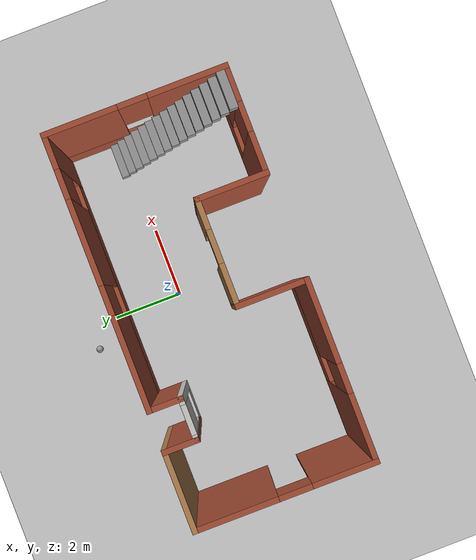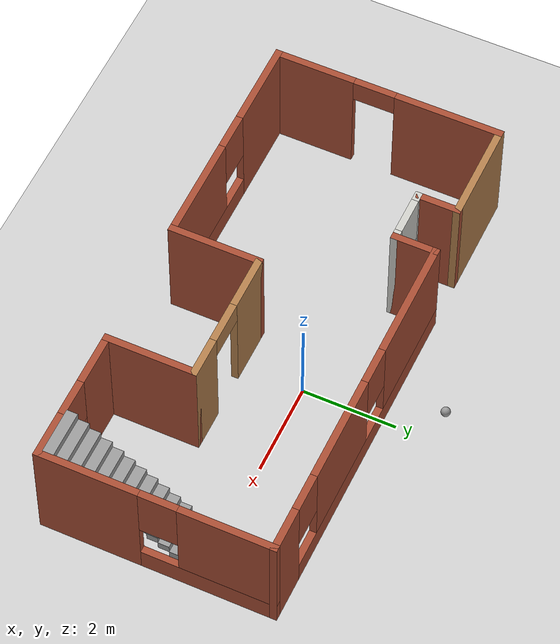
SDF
<sdf version="1.6">
 <world name="default">
  <plugin name="hello" filename="libhello.so"/>
  <light name="sun" type="directional">
   <pose>0 0 10 0 -0 0</pose>
   <diffuse>0.8 0.8 0.8 1</diffuse>
   <specular>0.2 0.2 0.2 1</specular>
   <attenuation>
    <range>1000</range>
    <constant>0.9</constant>
    <linear>0.01</linear>
    <quadratic>0.001</quadratic>
   </attenuation>
   <direction>-0.5 0.1 -0.9</direction>
  </light>
  <model name="ground_plane">
   <static>1</static>
   <link name="link">
    <collision name="collision">
     <geometry><plane><normal>0 0 1</normal><size>100 100</size></plane></geometry>
     <surface>
      <contact><collide_bitmask>65535</collide_bitmask></contact>
      <friction><ode><mu>100</mu><mu2>50</mu2></ode></friction>
     </surface>
    </collision>
    <visual name="visual">
     <cast_shadows>0</cast_shadows>
     <geometry><plane><normal>0 0 1</normal><size>100 100</size></plane></geometry>
     <material>
      <script><uri>file://media/materials/scripts/gazebo.material</uri><name>Gazebo/Grey</name></script>
     </material>
    </visual>
   </link>
  </model>
  <gravity>0 0 -9.8</gravity>
  <magnetic_field>6e-06 2.3e-05 -4.2e-05</magnetic_field>
  <atmosphere type="adiabatic"/>
  <physics name="default_physics" default="0" type="ode">
   <max_step_size>0.001</max_step_size>
   <real_time_factor>1</real_time_factor>
   <real_time_update_rate>1000</real_time_update_rate>
  </physics>
  <scene><ambient>0.4 0.4 0.4 1</ambient><background>0.7 0.7 0.7 1</background><shadows>1</shadows></scene>
  <spherical_coordinates>
   <surface_model>EARTH_WGS84</surface_model>
   <latitude_deg>0</latitude_deg>
   <longitude_deg>0</longitude_deg>
   <elevation>0</elevation>
   <heading_deg>0</heading_deg>
  </spherical_coordinates>
  <model name="mybuilding">
   <pose>-0.443169 -0.779943 0 0 -0 0</pose>
   <link name="Stairs_1">
    <visual name="Stairs_1_Visual_0">
     <pose>4.705 1.01833 0.083333 0 -0 0</pose>
     <geometry><box><size>1 0.233333 0.166667</size></box></geometry>
     <material>
      <script><uri>file://media/materials/scripts/gazebo.material</uri><name>Gazebo/Grey</name></script>
      <ambient>1 1 1 1</ambient>
     </material>
     <meta><layer>0</layer></meta>
    </visual>
    <collision name="Stairs_1_Collision_0">
     <geometry><box><size>1 0.233333 0.166667</size></box></geometry>
     <pose>4.705 1.01833 0.083333 0 -0 0</pose>
    </collision>
    <visual name="Stairs_1_Visual_1">
     <pose>4.705 0.785 0.25 0 -0 0</pose>
     <geometry><box><size>1 0.233333 0.166667</size></box></geometry>
     <material>
      <script><uri>file://media/materials/scripts/gazebo.material</uri><name>Gazebo/Grey</name></script>
      <ambient>1 1 1 1</ambient>
     </material>
     <meta><layer>0</layer></meta>
    </visual>
    <collision name="Stairs_1_Collision_1">
     <geometry><box><size>1 0.233333 0.166667</size></box></geometry>
     <pose>4.705 0.785 0.25 0 -0 0</pose>
    </collision>
    <visual name="Stairs_1_Visual_2">
     <pose>4.705 0.551666 0.416667 0 -0 0</pose>
     <geometry><box><size>1 0.233333 0.166667</size></box></geometry>
     <material>
      <script><uri>file://media/materials/scripts/gazebo.material</uri><name>Gazebo/Grey</name></script>
      <ambient>1 1 1 1</ambient>
     </material>
     <meta><layer>0</layer></meta>
    </visual>
    <collision name="Stairs_1_Collision_2">
     <geometry><box><size>1 0.233333 0.166667</size></box></geometry>
     <pose>4.705 0.551666 0.416667 0 -0 0</pose>
    </collision>
    <visual name="Stairs_1_Visual_3">
     <pose>4.705 0.318333 0.583333 0 -0 0</pose>
     <geometry><box><size>1 0.233333 0.166667</size></box></geometry>
     <material>
      <script><uri>file://media/materials/scripts/gazebo.material</uri><name>Gazebo/Grey</name></script>
      <ambient>1 1 1 1</ambient>
     </material>
     <meta><layer>0</layer></meta>
    </visual>
    <collision name="Stairs_1_Collision_3">
     <geometry><box><size>1 0.233333 0.166667</size></box></geometry>
     <pose>4.705 0.318333 0.583333 0 -0 0</pose>
    </collision>
    <visual name="Stairs_1_Visual_4">
     <pose>4.705 0.085 0.75 0 -0 0</pose>
     <geometry><box><size>1 0.233333 0.166667</size></box></geometry>
     <material>
      <script><uri>file://media/materials/scripts/gazebo.material</uri><name>Gazebo/Grey</name></script>
      <ambient>1 1 1 1</ambient>
     </material>
     <meta><layer>0</layer></meta>
    </visual>
    <collision name="Stairs_1_Collision_4">
     <geometry><box><size>1 0.233333 0.166667</size></box></geometry>
     <pose>4.705 0.085 0.75 0 -0 0</pose>
    </collision>
    <visual name="Stairs_1_Visual_5">
     <pose>4.705 -0.148334 0.916667 0 -0 0</pose>
     <geometry><box><size>1 0.233333 0.166667</size></box></geometry>
     <material>
      <script><uri>file://media/materials/scripts/gazebo.material</uri><name>Gazebo/Grey</name></script>
      <ambient>1 1 1 1</ambient>
     </material>
     <meta><layer>0</layer></meta>
    </visual>
    <collision name="Stairs_1_Collision_5">
     <geometry><box><size>1 0.233333 0.166667</size></box></geometry>
     <pose>4.705 -0.148334 0.916667 0 -0 0</pose>
    </collision>
    <visual name="Stairs_1_Visual_6">
     <pose>4.705 -0.381667 1.08333 0 -0 0</pose>
     <geometry><box><size>1 0.233333 0.166667</size></box></geometry>
     <material>
      <script><uri>file://media/materials/scripts/gazebo.material</uri><name>Gazebo/Grey</name></script>
      <ambient>1 1 1 1</ambient>
     </material>
     <meta><layer>0</layer></meta>
    </visual>
    <collision name="Stairs_1_Collision_6">
     <geometry><box><size>1 0.233333 0.166667</size></box></geometry>
     <pose>4.705 -0.381667 1.08333 0 -0 0</pose>
    </collision>
    <visual name="Stairs_1_Visual_7">
     <pose>4.705 -0.615 1.25 0 -0 0</pose>
     <geometry><box><size>1 0.233333 0.166667</size></box></geometry>
     <material>
      <script><uri>file://media/materials/scripts/gazebo.material</uri><name>Gazebo/Grey</name></script>
      <ambient>1 1 1 1</ambient>
     </material>
     <meta><layer>0</layer></meta>
    </visual>
    <collision name="Stairs_1_Collision_7">
     <geometry><box><size>1 0.233333 0.166667</size></box></geometry>
     <pose>4.705 -0.615 1.25 0 -0 0</pose>
    </collision>
    <visual name="Stairs_1_Visual_8">
     <pose>4.705 -0.848333 1.41667 0 -0 0</pose>
     <geometry><box><size>1 0.233333 0.166667</size></box></geometry>
     <material>
      <script><uri>file://media/materials/scripts/gazebo.material</uri><name>Gazebo/Grey</name></script>
      <ambient>1 1 1 1</ambient>
     </material>
     <meta><layer>0</layer></meta>
    </visual>
    <collision name="Stairs_1_Collision_8">
     <geometry><box><size>1 0.233333 0.166667</size></box></geometry>
     <pose>4.705 -0.848333 1.41667 0 -0 0</pose>
    </collision>
    <visual name="Stairs_1_Visual_9">
     <pose>4.705 -1.08167 1.58333 0 -0 0</pose>
     <geometry><box><size>1 0.233333 0.166667</size></box></geometry>
     <material>
      <script><uri>file://media/materials/scripts/gazebo.material</uri><name>Gazebo/Grey</name></script>
      <ambient>1 1 1 1</ambient>
     </material>
     <meta><layer>0</layer></meta>
    </visual>
    <collision name="Stairs_1_Collision_9">
     <geometry><box><size>1 0.233333 0.166667</size></box></geometry>
     <pose>4.705 -1.08167 1.58333 0 -0 0</pose>
    </collision>
    <visual name="Stairs_1_Visual_10">
     <pose>4.705 -1.315 1.75 0 -0 0</pose>
     <geometry><box><size>1 0.233333 0.166667</size></box></geometry>
     <material>
      <script><uri>file://media/materials/scripts/gazebo.material</uri><name>Gazebo/Grey</name></script>
      <ambient>1 1 1 1</ambient>
     </material>
     <meta><layer>0</layer></meta>
    </visual>
    <collision name="Stairs_1_Collision_10">
     <geometry><box><size>1 0.233333 0.166667</size></box></geometry>
     <pose>4.705 -1.315 1.75 0 -0 0</pose>
    </collision>
    <visual name="Stairs_1_Visual_11">
     <pose>4.705 -1.54833 1.91667 0 -0 0</pose>
     <geometry><box><size>1 0.233333 0.166667</size></box></geometry>
     <material>
      <script><uri>file://media/materials/scripts/gazebo.material</uri><name>Gazebo/Grey</name></script>
      <ambient>1 1 1 1</ambient>
     </material>
     <meta><layer>0</layer></meta>
    </visual>
    <collision name="Stairs_1_Collision_11">
     <geometry><box><size>1 0.233333 0.166667</size></box></geometry>
     <pose>4.705 -1.54833 1.91667 0 -0 0</pose>
    </collision>
    <visual name="Stairs_1_Visual_12">
     <pose>4.705 -1.78167 2.08333 0 -0 0</pose>
     <geometry><box><size>1 0.233333 0.166667</size></box></geometry>
     <material>
      <script><uri>file://media/materials/scripts/gazebo.material</uri><name>Gazebo/Grey</name></script>
      <ambient>1 1 1 1</ambient>
     </material>
     <meta><layer>0</layer></meta>
    </visual>
    <collision name="Stairs_1_Collision_12">
     <geometry><box><size>1 0.233333 0.166667</size></box></geometry>
     <pose>4.705 -1.78167 2.08333 0 -0 0</pose>
    </collision>
    <visual name="Stairs_1_Visual_13">
     <pose>4.705 -2.015 2.25 0 -0 0</pose>
     <geometry><box><size>1 0.233333 0.166667</size></box></geometry>
     <material>
      <script><uri>file://media/materials/scripts/gazebo.material</uri><name>Gazebo/Grey</name></script>
      <ambient>1 1 1 1</ambient>
     </material>
     <meta><layer>0</layer></meta>
    </visual>
    <collision name="Stairs_1_Collision_13">
     <geometry><box><size>1 0.233333 0.166667</size></box></geometry>
     <pose>4.705 -2.015 2.25 0 -0 0</pose>
    </collision>
    <visual name="Stairs_1_Visual_14">
     <pose>4.705 -2.24833 2.41667 0 -0 0</pose>
     <geometry><box><size>1 0.233333 0.166667</size></box></geometry>
     <material>
      <script><uri>file://media/materials/scripts/gazebo.material</uri><name>Gazebo/Grey</name></script>
      <ambient>1 1 1 1</ambient>
     </material>
     <meta><layer>0</layer></meta>
    </visual>
    <collision name="Stairs_1_Collision_14">
     <geometry><box><size>1 0.233333 0.166667</size></box></geometry>
     <pose>4.705 -2.24833 2.41667 0 -0 0</pose>
    </collision>
   </link>
   <link name="Wall_10">
    <pose>5.275 0 0 0 -0 1.5708</pose>
    <visual name="Wall_10_Visual_0">
     <pose>-1.4175 0 1.25 0 -0 0</pose>
     <geometry><box><size>2.165 0.15 2.5</size></box></geometry>
     <material>
      <script><uri>file://media/materials/scripts/gazebo.material</uri><name>Gazebo/Bricks</name></script>
      <ambient>1 0.764706 0.305882 1</ambient>
     </material>
     <meta><layer>0</layer></meta>
    </visual>
    <collision name="Wall_10_Collision_0">
     <geometry><box><size>2.165 0.15 2.5</size></box></geometry>
     <pose>-1.4175 0 1.25 0 -0 0</pose>
    </collision>
    <visual name="Wall_10_Visual_1">
     <pose>1.0825 0 0.25 0 -0 0</pose>
     <geometry><box><size>2.835 0.15 0.5</size></box></geometry>
     <material>
      <script><uri>file://media/materials/scripts/gazebo.material</uri><name>Gazebo/Bricks</name></script>
      <ambient>1 0.764706 0.305882 1</ambient>
     </material>
     <meta><layer>0</layer></meta>
    </visual>
    <collision name="Wall_10_Collision_1">
     <geometry><box><size>2.835 0.15 0.5</size></box></geometry>
     <pose>1.0825 0 0.25 0 -0 0</pose>
    </collision>
    <visual name="Wall_10_Visual_2">
     <pose>1.4825 0 1.5 0 -0 0</pose>
     <geometry><box><size>2.035 0.15 2</size></box></geometry>
     <material>
      <script><uri>file://media/materials/scripts/gazebo.material</uri><name>Gazebo/Bricks</name></script>
      <ambient>1 0.764706 0.305882 1</ambient>
     </material>
     <meta><layer>0</layer></meta>
    </visual>
    <collision name="Wall_10_Collision_2">
     <geometry><box><size>2.035 0.15 2</size></box></geometry>
     <pose>1.4825 0 1.5 0 -0 0</pose>
    </collision>
    <visual name="Wall_10_Visual_3">
     <pose>0.065 0 1.9 0 -0 0</pose>
     <geometry><box><size>0.8 0.15 1.2</size></box></geometry>
     <material>
      <script><uri>file://media/materials/scripts/gazebo.material</uri><name>Gazebo/Bricks</name></script>
      <ambient>1 0.764706 0.305882 1</ambient>
     </material>
     <meta><layer>0</layer></meta>
    </visual>
    <collision name="Wall_10_Collision_3">
     <geometry><box><size>0.8 0.15 1.2</size></box></geometry>
     <pose>0.065 0 1.9 0 -0 0</pose>
    </collision>
   </link>
   <link name="Wall_11">
    <pose>1.6 2.425 0 0 -0 3.14159</pose>
    <visual name="Wall_11_Visual_0">
     <pose>-3.2575 0 1.25 0 -0 0</pose>
     <geometry><box><size>0.985 0.15 2.5</size></box></geometry>
     <material>
      <script><uri>file://media/materials/scripts/gazebo.material</uri><name>Gazebo/Bricks</name></script>
      <ambient>1 0.764706 0.305882 1</ambient>
     </material>
     <meta><layer>0</layer></meta>
    </visual>
    <collision name="Wall_11_Collision_0">
     <geometry><box><size>0.985 0.15 2.5</size></box></geometry>
     <pose>-3.2575 0 1.25 0 -0 0</pose>
    </collision>
    <visual name="Wall_11_Visual_1">
     <pose>0.4925 0 0.25 0 -0 0</pose>
     <geometry><box><size>6.515 0.15 0.5</size></box></geometry>
     <material>
      <script><uri>file://media/materials/scripts/gazebo.material</uri><name>Gazebo/Bricks</name></script>
      <ambient>1 0.764706 0.305882 1</ambient>
     </material>
     <meta><layer>0</layer></meta>
    </visual>
    <collision name="Wall_11_Collision_1">
     <geometry><box><size>6.515 0.15 0.5</size></box></geometry>
     <pose>0.4925 0 0.25 0 -0 0</pose>
    </collision>
    <visual name="Wall_11_Visual_2">
     <pose>-0.815 0 1.5 0 -0 0</pose>
     <geometry><box><size>2.3 0.15 2</size></box></geometry>
     <material>
      <script><uri>file://media/materials/scripts/gazebo.material</uri><name>Gazebo/Bricks</name></script>
      <ambient>1 0.764706 0.305882 1</ambient>
     </material>
     <meta><layer>0</layer></meta>
    </visual>
    <collision name="Wall_11_Collision_2">
     <geometry><box><size>2.3 0.15 2</size></box></geometry>
     <pose>-0.815 0 1.5 0 -0 0</pose>
    </collision>
    <visual name="Wall_11_Visual_3">
     <pose>2.4425 0 1.5 0 -0 0</pose>
     <geometry><box><size>2.615 0.15 2</size></box></geometry>
     <material>
      <script><uri>file://media/materials/scripts/gazebo.material</uri><name>Gazebo/Bricks</name></script>
      <ambient>1 0.764706 0.305882 1</ambient>
     </material>
     <meta><layer>0</layer></meta>
    </visual>
    <collision name="Wall_11_Collision_3">
     <geometry><box><size>2.615 0.15 2</size></box></geometry>
     <pose>2.4425 0 1.5 0 -0 0</pose>
    </collision>
    <visual name="Wall_11_Visual_4">
     <pose>-2.365 0 1.9 0 -0 0</pose>
     <geometry><box><size>0.8 0.15 1.2</size></box></geometry>
     <material>
      <script><uri>file://media/materials/scripts/gazebo.material</uri><name>Gazebo/Bricks</name></script>
      <ambient>1 0.764706 0.305882 1</ambient>
     </material>
     <meta><layer>0</layer></meta>
    </visual>
    <collision name="Wall_11_Collision_4">
     <geometry><box><size>0.8 0.15 1.2</size></box></geometry>
     <pose>-2.365 0 1.9 0 -0 0</pose>
    </collision>
    <visual name="Wall_11_Visual_5">
     <pose>0.735 0 1.9 0 -0 0</pose>
     <geometry><box><size>0.8 0.15 1.2</size></box></geometry>
     <material>
      <script><uri>file://media/materials/scripts/gazebo.material</uri><name>Gazebo/Bricks</name></script>
      <ambient>1 0.764706 0.305882 1</ambient>
     </material>
     <meta><layer>0</layer></meta>
    </visual>
    <collision name="Wall_11_Collision_5">
     <geometry><box><size>0.8 0.15 1.2</size></box></geometry>
     <pose>0.735 0 1.9 0 -0 0</pose>
    </collision>
   </link>
   <link name="Wall_12">
    <collision name="Wall_12_Collision">
     <geometry><box><size>1 0.15 2.5</size></box></geometry>
     <pose>0 0 1.25 0 -0 0</pose>
    </collision>
    <visual name="Wall_12_Visual">
     <pose>0 0 1.25 0 -0 0</pose>
     <geometry><box><size>1 0.15 2.5</size></box></geometry>
     <material>
      <script><uri>file://media/materials/scripts/gazebo.material</uri><name>Gazebo/Bricks</name></script>
      <ambient>1 0.764706 0.305882 1</ambient>
     </material>
     <meta><layer>0</layer></meta>
    </visual>
    <pose>-2.075 2 0 0 0 -1.5708</pose>
   </link>
   <link name="Wall_13">
    <pose>-2.625 1.575 0 0 -0 3.14159</pose>
    <visual name="Wall_13_Visual_0">
     <pose>-0.5075 0 1.25 0 -0 0</pose>
     <geometry><box><size>0.235 0.15 2.5</size></box></geometry>
     <material>
      <script><uri>file://media/materials/scripts/gazebo.material</uri><name>Gazebo/CeilingTiled</name></script>
      <ambient>1 0.764706 0.305882 1</ambient>
     </material>
     <meta><layer>0</layer></meta>
    </visual>
    <collision name="Wall_13_Collision_0">
     <geometry><box><size>0.235 0.15 2.5</size></box></geometry>
     <pose>-0.5075 0 1.25 0 -0 0</pose>
    </collision>
    <visual name="Wall_13_Visual_1">
     <pose>0.1175 0 0.25 0 -0 0</pose>
     <geometry><box><size>1.015 0.15 0.5</size></box></geometry>
     <material>
      <script><uri>file://media/materials/scripts/gazebo.material</uri><name>Gazebo/CeilingTiled</name></script>
      <ambient>1 0.764706 0.305882 1</ambient>
     </material>
     <meta><layer>0</layer></meta>
    </visual>
    <collision name="Wall_13_Collision_1">
     <geometry><box><size>1.015 0.15 0.5</size></box></geometry>
     <pose>0.1175 0 0.25 0 -0 0</pose>
    </collision>
    <visual name="Wall_13_Visual_2">
     <pose>0.5175 0 1.5 0 -0 0</pose>
     <geometry><box><size>0.215 0.15 2</size></box></geometry>
     <material>
      <script><uri>file://media/materials/scripts/gazebo.material</uri><name>Gazebo/CeilingTiled</name></script>
      <ambient>1 0.764706 0.305882 1</ambient>
     </material>
     <meta><layer>0</layer></meta>
    </visual>
    <collision name="Wall_13_Collision_2">
     <geometry><box><size>0.215 0.15 2</size></box></geometry>
     <pose>0.5175 0 1.5 0 -0 0</pose>
    </collision>
    <visual name="Wall_13_Visual_3">
     <pose>0.01 0 1.9 0 -0 0</pose>
     <geometry><box><size>0.8 0.15 1.2</size></box></geometry>
     <material>
      <script><uri>file://media/materials/scripts/gazebo.material</uri><name>Gazebo/CeilingTiled</name></script>
      <ambient>1 0.764706 0.305882 1</ambient>
     </material>
     <meta><layer>0</layer></meta>
    </visual>
    <collision name="Wall_13_Collision_3">
     <geometry><box><size>0.8 0.15 1.2</size></box></geometry>
     <pose>0.01 0 1.9 0 -0 0</pose>
    </collision>
   </link>
   <link name="Wall_14">
    <collision name="Wall_14_Collision">
     <geometry><box><size>1 0.15 2.5</size></box></geometry>
     <pose>0 0 1.25 0 -0 0</pose>
    </collision>
    <visual name="Wall_14_Visual">
     <pose>0 0 1.25 0 -0 0</pose>
     <geometry><box><size>1 0.15 2.5</size></box></geometry>
     <material>
      <script><uri>file://media/materials/scripts/gazebo.material</uri><name>Gazebo/Bricks</name></script>
      <ambient>1 0.764706 0.305882 1</ambient>
     </material>
     <meta><layer>0</layer></meta>
    </visual>
    <pose>-3.175 2 0 0 -0 1.5708</pose>
   </link>
   <link name="Wall_15">
    <collision name="Wall_15_Collision">
     <geometry><box><size>2.25 0.15 2.5</size></box></geometry>
     <pose>0 0 1.25 0 -0 0</pose>
    </collision>
    <visual name="Wall_15_Visual">
     <pose>0 0 1.25 0 -0 0</pose>
     <geometry><box><size>2.25 0.15 2.5</size></box></geometry>
     <material>
      <script><uri>file://media/materials/scripts/gazebo.material</uri><name>Gazebo/Wood</name></script>
      <ambient>1 0.764706 0.305882 1</ambient>
     </material>
     <meta><layer>0</layer></meta>
    </visual>
    <pose>-4.225 2.425 0 0 -0 3.14159</pose>
   </link>
   <link name="Wall_4">
    <pose>-5.275 0 0 0 0 -1.5708</pose>
    <visual name="Wall_4_Visual_0">
     <pose>-1.3375 0 1.25 0 -0 0</pose>
     <geometry><box><size>2.325 0.15 2.5</size></box></geometry>
     <material>
      <script><uri>file://media/materials/scripts/gazebo.material</uri><name>Gazebo/Bricks</name></script>
      <ambient>0.996078 0.47451 0.0196078 1</ambient>
     </material>
     <meta><layer>0</layer></meta>
    </visual>
    <collision name="Wall_4_Collision_0">
     <geometry><box><size>2.325 0.15 2.5</size></box></geometry>
     <pose>-1.3375 0 1.25 0 -0 0</pose>
    </collision>
    <visual name="Wall_4_Visual_1">
     <pose>1.6125 0 1.25 0 -0 0</pose>
     <geometry><box><size>1.775 0.15 2.5</size></box></geometry>
     <material>
      <script><uri>file://media/materials/scripts/gazebo.material</uri><name>Gazebo/Bricks</name></script>
      <ambient>0.996078 0.47451 0.0196078 1</ambient>
     </material>
     <meta><layer>0</layer></meta>
    </visual>
    <collision name="Wall_4_Collision_1">
     <geometry><box><size>1.775 0.15 2.5</size></box></geometry>
     <pose>1.6125 0 1.25 0 -0 0</pose>
    </collision>
    <visual name="Wall_4_Visual_2">
     <pose>0.275 0 2.25 0 -0 0</pose>
     <geometry><box><size>0.9 0.15 0.5</size></box></geometry>
     <material>
      <script><uri>file://media/materials/scripts/gazebo.material</uri><name>Gazebo/Bricks</name></script>
      <ambient>0.996078 0.47451 0.0196078 1</ambient>
     </material>
     <meta><layer>0</layer></meta>
    </visual>
    <collision name="Wall_4_Collision_2">
     <geometry><box><size>0.9 0.15 0.5</size></box></geometry>
     <pose>0.275 0 2.25 0 -0 0</pose>
    </collision>
   </link>
   <link name="Wall_5">
    <pose>-2.85 -2.425 0 0 -0 0</pose>
    <visual name="Wall_5_Visual_0">
     <pose>-1.5525 0 1.25 0 -0 0</pose>
     <geometry><box><size>1.895 0.15 2.5</size></box></geometry>
     <material>
      <script><uri>file://media/materials/scripts/gazebo.material</uri><name>Gazebo/Bricks</name></script>
      <ambient>1 0.764706 0.305882 1</ambient>
     </material>
     <meta><layer>0</layer></meta>
    </visual>
    <collision name="Wall_5_Collision_0">
     <geometry><box><size>1.895 0.15 2.5</size></box></geometry>
     <pose>-1.5525 0 1.25 0 -0 0</pose>
    </collision>
    <visual name="Wall_5_Visual_1">
     <pose>0.9475 0 0.25 0 -0 0</pose>
     <geometry><box><size>3.105 0.15 0.5</size></box></geometry>
     <material>
      <script><uri>file://media/materials/scripts/gazebo.material</uri><name>Gazebo/Bricks</name></script>
      <ambient>1 0.764706 0.305882 1</ambient>
     </material>
     <meta><layer>0</layer></meta>
    </visual>
    <collision name="Wall_5_Collision_1">
     <geometry><box><size>3.105 0.15 0.5</size></box></geometry>
     <pose>0.9475 0 0.25 0 -0 0</pose>
    </collision>
    <visual name="Wall_5_Visual_2">
     <pose>1.3475 0 1.5 0 -0 0</pose>
     <geometry><box><size>2.305 0.15 2</size></box></geometry>
     <material>
      <script><uri>file://media/materials/scripts/gazebo.material</uri><name>Gazebo/Bricks</name></script>
      <ambient>1 0.764706 0.305882 1</ambient>
     </material>
     <meta><layer>0</layer></meta>
    </visual>
    <collision name="Wall_5_Collision_2">
     <geometry><box><size>2.305 0.15 2</size></box></geometry>
     <pose>1.3475 0 1.5 0 -0 0</pose>
    </collision>
    <visual name="Wall_5_Visual_3">
     <pose>-0.205 0 1.9 0 -0 0</pose>
     <geometry><box><size>0.8 0.15 1.2</size></box></geometry>
     <material>
      <script><uri>file://media/materials/scripts/gazebo.material</uri><name>Gazebo/Bricks</name></script>
      <ambient>1 0.764706 0.305882 1</ambient>
     </material>
     <meta><layer>0</layer></meta>
    </visual>
    <collision name="Wall_5_Collision_3">
     <geometry><box><size>0.8 0.15 1.2</size></box></geometry>
     <pose>-0.205 0 1.9 0 -0 0</pose>
    </collision>
   </link>
   <link name="Wall_6">
    <collision name="Wall_6_Collision">
     <geometry><box><size>2 0.15 2.5</size></box></geometry>
     <pose>0 0 1.25 0 -0 0</pose>
    </collision>
    <visual name="Wall_6_Visual">
     <pose>0 0 1.25 0 -0 0</pose>
     <geometry><box><size>2 0.15 2.5</size></box></geometry>
     <material>
      <script><uri>file://media/materials/scripts/gazebo.material</uri><name>Gazebo/Bricks</name></script>
      <ambient>1 0.764706 0.305882 1</ambient>
     </material>
     <meta><layer>0</layer></meta>
    </visual>
    <pose>-0.425 -1.5 0 0 -0 1.5708</pose>
   </link>
   <link name="Wall_7">
    <pose>1 -0.575 0 0 -0 0</pose>
    <visual name="Wall_7_Visual_0">
     <pose>-0.8925 0 1.25 0 -0 0</pose>
     <geometry><box><size>1.215 0.15 2.5</size></box></geometry>
     <material>
      <script><uri>file://media/materials/scripts/gazebo.material</uri><name>Gazebo/Wood</name></script>
      <ambient>1 0.764706 0.305882 1</ambient>
     </material>
     <meta><layer>0</layer></meta>
    </visual>
    <collision name="Wall_7_Collision_0">
     <geometry><box><size>1.215 0.15 2.5</size></box></geometry>
     <pose>-0.8925 0 1.25 0 -0 0</pose>
    </collision>
    <visual name="Wall_7_Visual_1">
     <pose>1.0575 0 1.25 0 -0 0</pose>
     <geometry><box><size>0.885 0.15 2.5</size></box></geometry>
     <material>
      <script><uri>file://media/materials/scripts/gazebo.material</uri><name>Gazebo/Wood</name></script>
      <ambient>1 0.764706 0.305882 1</ambient>
     </material>
     <meta><layer>0</layer></meta>
    </visual>
    <collision name="Wall_7_Collision_1">
     <geometry><box><size>0.885 0.15 2.5</size></box></geometry>
     <pose>1.0575 0 1.25 0 -0 0</pose>
    </collision>
    <visual name="Wall_7_Visual_2">
     <pose>0.165 0 2.25 0 -0 0</pose>
     <geometry><box><size>0.9 0.15 0.5</size></box></geometry>
     <material>
      <script><uri>file://media/materials/scripts/gazebo.material</uri><name>Gazebo/Wood</name></script>
      <ambient>1 0.764706 0.305882 1</ambient>
     </material>
     <meta><layer>0</layer></meta>
    </visual>
    <collision name="Wall_7_Collision_2">
     <geometry><box><size>0.9 0.15 0.5</size></box></geometry>
     <pose>0.165 0 2.25 0 -0 0</pose>
    </collision>
   </link>
   <link name="Wall_8">
    <collision name="Wall_8_Collision">
     <geometry><box><size>2 0.15 2.5</size></box></geometry>
     <pose>0 0 1.25 0 -0 0</pose>
    </collision>
    <visual name="Wall_8_Visual">
     <pose>0 0 1.25 0 -0 0</pose>
     <geometry><box><size>2 0.15 2.5</size></box></geometry>
     <material>
      <script><uri>file://media/materials/scripts/gazebo.material</uri><name>Gazebo/Bricks</name></script>
      <ambient>1 0.764706 0.305882 1</ambient>
     </material>
     <meta><layer>0</layer></meta>
    </visual>
    <pose>2.425 -1.5 0 0 0 -1.5708</pose>
   </link>
   <link name="Wall_9">
    <pose>3.85 -2.425 0 0 -0 0</pose>
    <visual name="Wall_9_Visual_0">
     <pose>-0.9125 0 1.25 0 -0 0</pose>
     <geometry><box><size>1.175 0.15 2.5</size></box></geometry>
     <material>
      <script><uri>file://media/materials/scripts/gazebo.material</uri><name>Gazebo/Bricks</name></script>
      <ambient>1 0.764706 0.305882 1</ambient>
     </material>
     <meta><layer>0</layer></meta>
    </visual>
    <collision name="Wall_9_Collision_0">
     <geometry><box><size>1.175 0.15 2.5</size></box></geometry>
     <pose>-0.9125 0 1.25 0 -0 0</pose>
    </collision>
    <visual name="Wall_9_Visual_1">
     <pose>0.5875 0 0.25 0 -0 0</pose>
     <geometry><box><size>1.825 0.15 0.5</size></box></geometry>
     <material>
      <script><uri>file://media/materials/scripts/gazebo.material</uri><name>Gazebo/Bricks</name></script>
      <ambient>1 0.764706 0.305882 1</ambient>
     </material>
     <meta><layer>0</layer></meta>
    </visual>
    <collision name="Wall_9_Collision_1">
     <geometry><box><size>1.825 0.15 0.5</size></box></geometry>
     <pose>0.5875 0 0.25 0 -0 0</pose>
    </collision>
    <visual name="Wall_9_Visual_2">
     <pose>0.9875 0 1.5 0 -0 0</pose>
     <geometry><box><size>1.025 0.15 2</size></box></geometry>
     <material>
      <script><uri>file://media/materials/scripts/gazebo.material</uri><name>Gazebo/Bricks</name></script>
      <ambient>1 0.764706 0.305882 1</ambient>
     </material>
     <meta><layer>0</layer></meta>
    </visual>
    <collision name="Wall_9_Collision_2">
     <geometry><box><size>1.025 0.15 2</size></box></geometry>
     <pose>0.9875 0 1.5 0 -0 0</pose>
    </collision>
    <visual name="Wall_9_Visual_3">
     <pose>0.075 0 1.9 0 -0 0</pose>
     <geometry><box><size>0.8 0.15 1.2</size></box></geometry>
     <material>
      <script><uri>file://media/materials/scripts/gazebo.material</uri><name>Gazebo/Bricks</name></script>
      <ambient>1 0.764706 0.305882 1</ambient>
     </material>
     <meta><layer>0</layer></meta>
    </visual>
    <collision name="Wall_9_Collision_3">
     <geometry><box><size>0.8 0.15 1.2</size></box></geometry>
     <pose>0.075 0 1.9 0 -0 0</pose>
    </collision>
   </link>
   <static>1</static>
  </model>
  <model name="my_ball">
   <link name="link_0">
    <inertial>
     <mass>1</mass>
     <inertia><ixx>0.1</ixx><ixy>0</ixy><ixz>0</ixz><iyy>0.1</iyy><iyz>0</iyz><izz>0.1</izz></inertia>
    </inertial>
    <visual name="visual">
     <geometry><sphere><radius>0.1</radius></sphere></geometry>
     <material>
      <lighting>1</lighting>
      <script><uri>file://media/materials/scripts/gazebo.material</uri><name>Gazebo/Grey</name></script>
      <shader type="pixel"><normal_map>__default__</normal_map></shader>
      <ambient>1 1 1 1</ambient>
      <diffuse>1 1 1 1</diffuse>
      <specular>1 1 1 1</specular>
      <emissive>1 1 1 1</emissive>
     </material>
    </visual>
    <collision name="collision">
     <geometry><sphere><radius>0.1</radius></sphere></geometry>
     <surface>
      <friction>
       <ode><mu>1</mu><mu2>1</mu2><fdir1>0 0 0</fdir1><slip1>0</slip1><slip2>0</slip2></ode>
       <torsional>
        <coefficient>1</coefficient>
        <patch_radius>0</patch_radius>
        <surface_radius>0</surface_radius>
        <use_patch_radius>1</use_patch_radius>
        <ode><slip>0</slip></ode>
       </torsional>
      </friction>
      <bounce><restitution_coefficient>0</restitution_coefficient><threshold>1e+06</threshold></bounce>
      <contact>
       <collide_without_contact>0</collide_without_contact>
       <collide_without_contact_bitmask>1</collide_without_contact_bitmask>
       <collide_bitmask>1</collide_bitmask>
       <ode>
        <soft_cfm>0</soft_cfm>
        <soft_erp>0.2</soft_erp>
        <kp>1e+13</kp>
        <kd>1</kd>
        <max_vel>0.01</max_vel>
        <min_depth>0</min_depth>
       </ode>
       <bullet>
        <split_impulse>1</split_impulse>
        <split_impulse_penetration_threshold>-0.01</split_impulse_penetration_threshold>
        <soft_cfm>0</soft_cfm>
        <soft_erp>0.2</soft_erp>
        <kp>1e+13</kp>
        <kd>1</kd>
       </bullet>
      </contact>
     </surface>
    </collision>
   </link>
   <static>0</static>
   <pose>-0.681914 2.76513 0.1 0 -0 0</pose>
  </model>
 </world>
</sdf>
